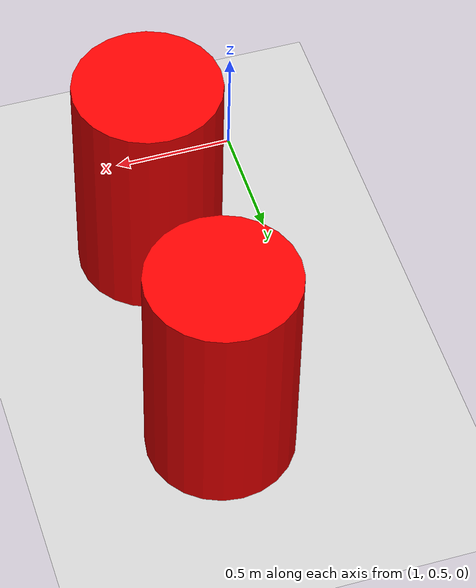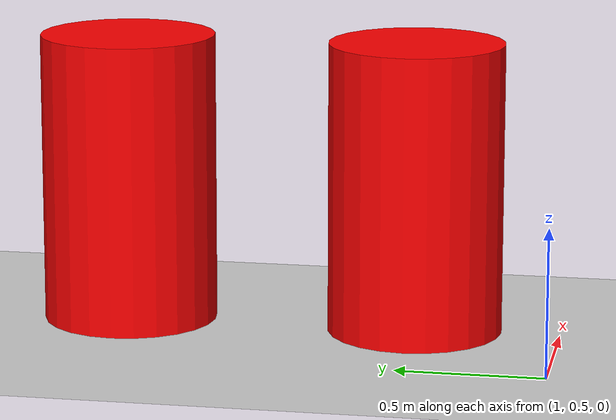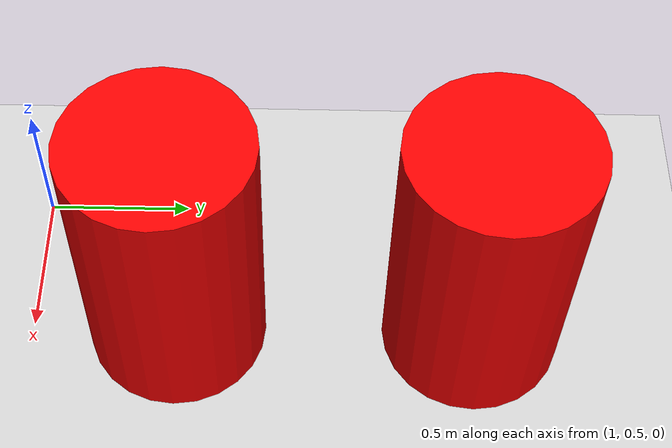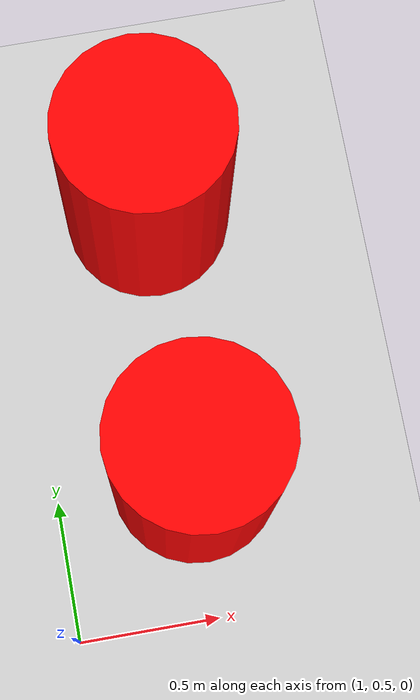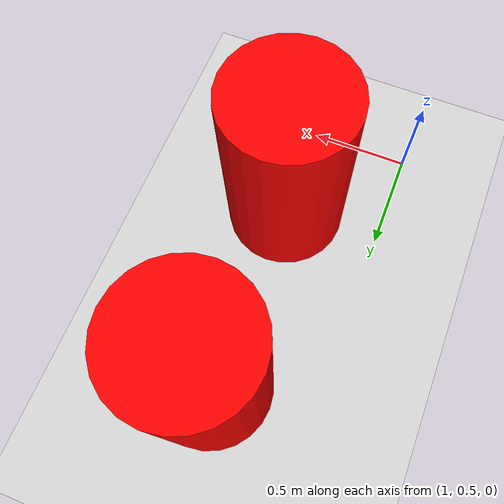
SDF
<?xml version="1.0" ?>
<sdf version="1.8">
    <world name="lab1_world">
        <physics name="1ms" type="ignored">
            <max_step_size>0.001</max_step_size>
            <real_time_factor>1.0</real_time_factor>
        </physics>

        <plugin filename="gz-sim-physics-system" name="gz::sim::systems::Physics"/>
        <plugin filename="gz-sim-user-commands-system" name="gz::sim::systems::UserCommands"/>
        <plugin filename="gz-sim-scene-broadcaster-system" name="gz::sim::systems::SceneBroadcaster"/>
        <plugin filename="gz-sim-sensors-system" name="gz::sim::systems::Sensors">
            <render_engine>ogre2</render_engine>
        </plugin>

        <light type="directional" name="sun">
            <cast_shadows>true</cast_shadows>
            <pose>0 0 10 0 0 0</pose>
            <diffuse>0.8 0.8 0.8 1</diffuse>
            <specular>0.2 0.2 0.2 1</specular>
            <direction>-0.5 0.1 -0.9</direction>
        </light>

        <model name="ground_plane">
            <static>true</static>
            <link name="link">
                <collision name="collision">
                    <geometry><plane><normal>0 0 1</normal><size>100 100</size></plane></geometry>
                </collision>
                <visual name="visual">
                    <geometry><plane><normal>0 0 1</normal><size>100 100</size></plane></geometry>
                    <material><ambient>0.8 0.8 0.8 1</ambient><diffuse>0.8 0.8 0.8 1</diffuse></material>
                </visual>
            </link>
        </model>

        <model name='obstacle_1'>
            <static>true</static>
            <pose>1.5 1.0 0.5 0 0 0</pose>
            <link name='link'>
                <collision name='collision'><geometry><cylinder><radius>0.3</radius><length>1.0</length></cylinder></geometry></collision>
                <visual name='visual'>
                    <geometry><cylinder><radius>0.3</radius><length>1.0</length></cylinder></geometry>
                    <material><ambient>1 0 0 1</ambient></material>
                </visual>
            </link>
        </model>

        <model name='obstacle_2'>
            <static>true</static>
            <pose>1.5 2.0 0.5 0 0 0</pose>
            <link name='link'>
                <collision name='collision'><geometry><cylinder><radius>0.3</radius><length>1.0</length></cylinder></geometry></collision>
                <visual name='visual'>
                    <geometry><cylinder><radius>0.3</radius><length>1.0</length></cylinder></geometry>
                    <material><ambient>1 0 0 1</ambient></material>
                </visual>
            </link>
        </model>
    </world>
</sdf>
